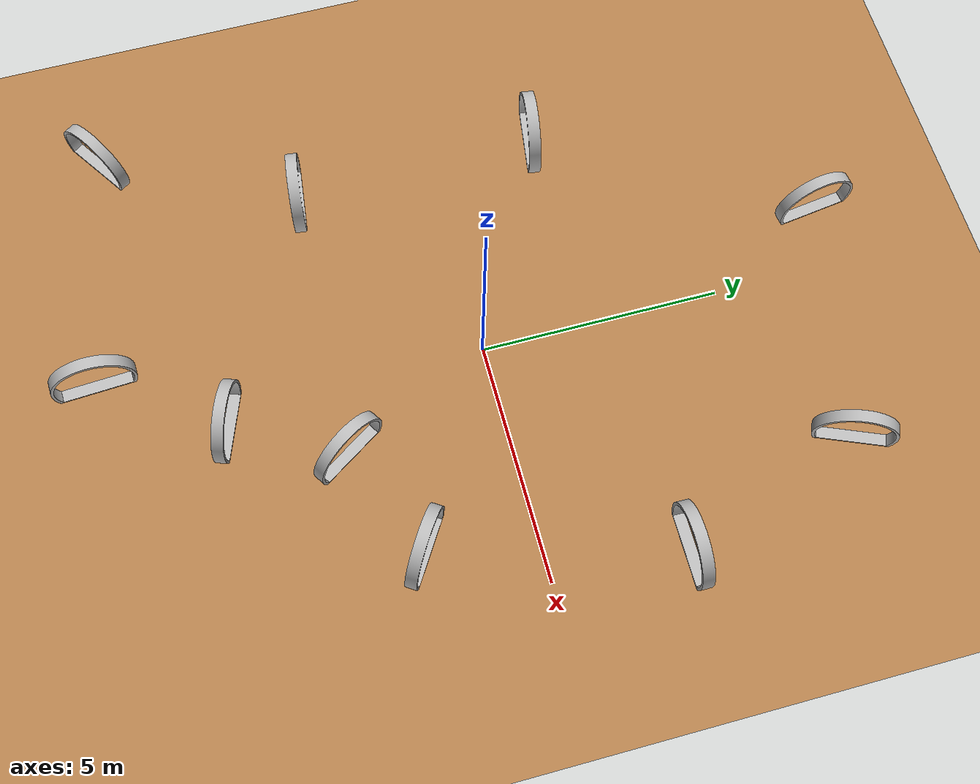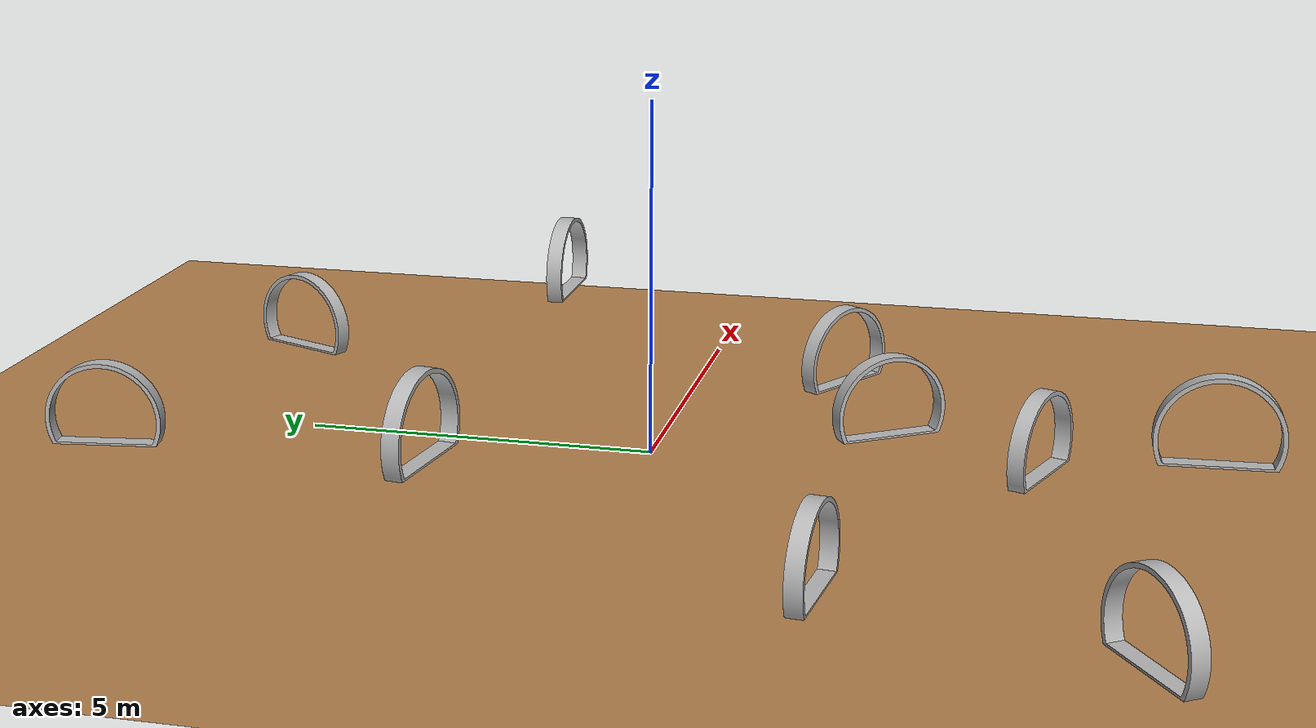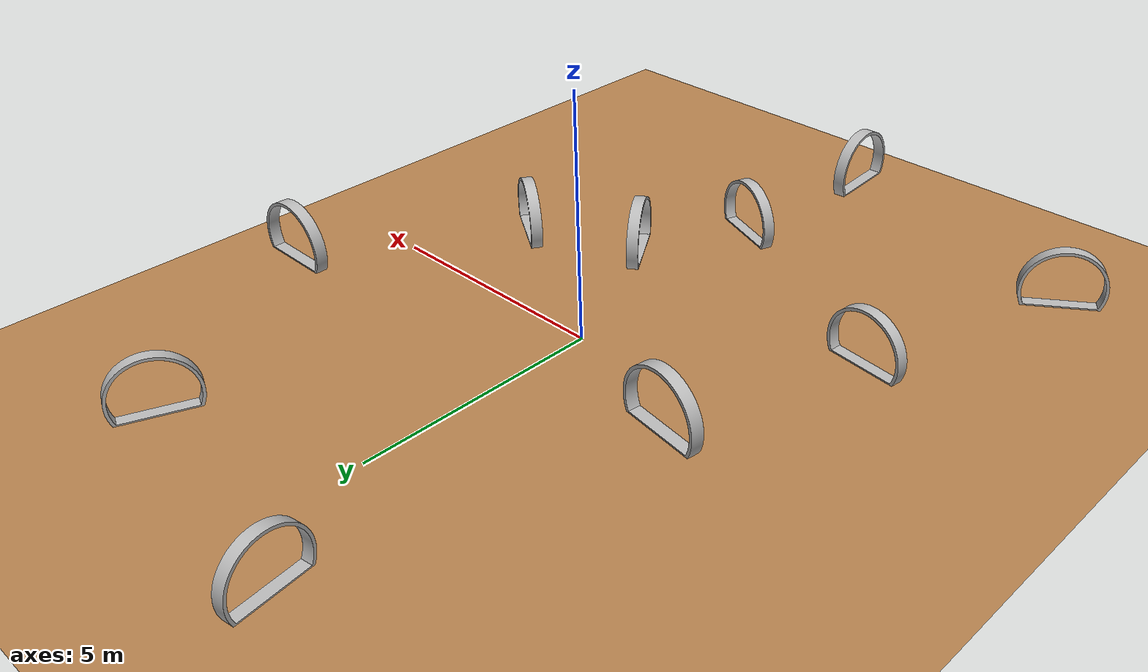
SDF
<sdf version="1.5">
 <world name="default">
  <light type="directional" name="point_light">
   <pose>0.0 0 15 0 0 0</pose>
   <cast_shadows>false</cast_shadows>
  </light>
  <model name="ground_plane">
   <static>1</static>
   <link name="link">
    <collision name="collision">
     <geometry><plane><normal>0 0 1</normal><size>100 100</size></plane></geometry>
     <surface><friction><ode><mu>100</mu><mu2>50</mu2></ode></friction></surface>
    </collision>
    <visual name="visual">
     <cast_shadows>0</cast_shadows>
     <geometry><plane><normal>0 0 1</normal><size>22 22</size></plane></geometry>
     <material><script><uri>model://texture/texture.material</uri><name>Floor_Wood</name></script></material>
    </visual>
   </link>
  </model>
  <physics name="default_physics" default="0" type="ode">
   <gravity>0 0 -9.8066</gravity>
   <ode>
    <solver>
     <type>quick</type>
     <iters>150</iters>
     <sor>1.3</sor>
     <use_dynamic_moi_rescaling>0</use_dynamic_moi_rescaling>
    </solver>
    <constraints>
     <cfm>0.00001</cfm>
     <erp>0.2</erp>
     <contact_max_correcting_vel>1000</contact_max_correcting_vel>
     <contact_surface_layer>0.01</contact_surface_layer>
    </constraints>
   </ode>
   <max_step_size>0.004</max_step_size>
   <real_time_factor>1000.0</real_time_factor>
   <real_time_update_rate>250</real_time_update_rate>
   <magnetic_field>6.0e-6 2.3e-5 -4.2e-5</magnetic_field>
  </physics>
  <gravity>0 0 -9.8066</gravity>
  <magnetic_field>6e-06 2.3e-05 -4.2e-05</magnetic_field>
  <atmosphere type="adiabatic"/>
  <scene><ambient>0.4 0.4 0.4 1</ambient><background>0.7 0.7 0.7 1</background><shadows>1</shadows></scene>
  <spherical_coordinates>
   <surface_model>EARTH_WGS84</surface_model>
   <latitude_deg>0</latitude_deg>
   <longitude_deg>0</longitude_deg>
   <elevation>0</elevation>
   <heading_deg>0</heading_deg>
  </spherical_coordinates>
  <model name="circle_gate_race_0">
   <static>1</static>
   <link name="link">
    <inertial>
     <mass>10</mass>
     <inertia><ixx>10</ixx><ixy>0</ixy><ixz>0</ixz><iyy>10</iyy><iyz>0</iyz><izz>10</izz></inertia>
    </inertial>
    <collision name="collision">
     <geometry>
      <mesh><uri>model://circle_gate_race/meshes/gate.dae</uri><scale>0.6 0.6 0.6</scale></mesh>
     </geometry>
    </collision>
    <visual name="visual">
     <geometry>
      <mesh><uri>model://circle_gate_race/meshes/gate.dae</uri><scale>0.6 0.6 0.6</scale></mesh>
     </geometry>
     <material><script><uri>model://texture/texture.material</uri><name>gate_texture</name></script></material>
    </visual>
   </link>
   <pose>1.48015 -3.14769 0 0 -0 0.580225</pose>
  </model>
  <model name="circle_gate_race">
   <static>1</static>
   <link name="link">
    <inertial>
     <mass>10</mass>
     <inertia><ixx>10</ixx><ixy>0</ixy><ixz>0</ixz><iyy>10</iyy><iyz>0</iyz><izz>10</izz></inertia>
    </inertial>
    <collision name="collision">
     <geometry>
      <mesh><uri>model://circle_gate_race/meshes/gate.dae</uri><scale>0.6 0.6 0.6</scale></mesh>
     </geometry>
    </collision>
    <visual name="visual">
     <geometry>
      <mesh><uri>model://circle_gate_race/meshes/gate.dae</uri><scale>0.6 0.6 0.6</scale></mesh>
     </geometry>
     <material><script><uri>model://texture/texture.material</uri><name>gate_texture</name></script></material>
    </visual>
   </link>
   <pose>0.314866 -5.34328 0 0 -0 1.21727</pose>
  </model>
  <model name="circle_gate_race_1">
   <static>1</static>
   <link name="link">
    <inertial>
     <mass>10</mass>
     <inertia><ixx>10</ixx><ixy>0</ixy><ixz>0</ixz><iyy>10</iyy><iyz>0</iyz><izz>10</izz></inertia>
    </inertial>
    <collision name="collision">
     <geometry>
      <mesh><uri>model://circle_gate_race/meshes/gate.dae</uri><scale>0.6 0.6 0.6</scale></mesh>
     </geometry>
    </collision>
    <visual name="visual">
     <geometry>
      <mesh><uri>model://circle_gate_race/meshes/gate.dae</uri><scale>0.6 0.6 0.6</scale></mesh>
     </geometry>
     <material><script><uri>model://texture/texture.material</uri><name>gate_texture</name></script></material>
    </visual>
   </link>
   <pose>3.77235 -2.18299 0 0 -0 0.999678</pose>
  </model>
  <model name="circle_gate_race_2">
   <static>1</static>
   <link name="link">
    <inertial>
     <mass>10</mass>
     <inertia><ixx>10</ixx><ixy>0</ixy><ixz>0</ixz><iyy>10</iyy><iyz>0</iyz><izz>10</izz></inertia>
    </inertial>
    <collision name="collision">
     <geometry>
      <mesh><uri>model://circle_gate_race/meshes/gate.dae</uri><scale>0.6 0.6 0.6</scale></mesh>
     </geometry>
    </collision>
    <visual name="visual">
     <geometry>
      <mesh><uri>model://circle_gate_race/meshes/gate.dae</uri><scale>0.6 0.6 0.6</scale></mesh>
     </geometry>
     <material><script><uri>model://texture/texture.material</uri><name>gate_texture</name></script></material>
    </visual>
   </link>
   <pose>5.21431 2.58942 0.779087 0 -0 1.56345</pose>
  </model>
  <model name="circle_gate_race_3">
   <static>1</static>
   <link name="link">
    <inertial>
     <mass>10</mass>
     <inertia><ixx>10</ixx><ixy>0</ixy><ixz>0</ixz><iyy>10</iyy><iyz>0</iyz><izz>10</izz></inertia>
    </inertial>
    <collision name="collision">
     <geometry>
      <mesh><uri>model://circle_gate_race/meshes/gate.dae</uri><scale>0.6 0.6 0.6</scale></mesh>
     </geometry>
    </collision>
    <visual name="visual">
     <geometry>
      <mesh><uri>model://circle_gate_race/meshes/gate.dae</uri><scale>0.6 0.6 0.6</scale></mesh>
     </geometry>
     <material><script><uri>model://texture/texture.material</uri><name>gate_texture</name></script></material>
    </visual>
   </link>
   <pose>-0.878261 -7.61263 0.767224 0 -0 0.056272</pose>
  </model>
  <model name="circle_gate_race_4">
   <static>1</static>
   <link name="link">
    <inertial>
     <mass>10</mass>
     <inertia><ixx>10</ixx><ixy>0</ixy><ixz>0</ixz><iyy>10</iyy><iyz>0</iyz><izz>10</izz></inertia>
    </inertial>
    <collision name="collision">
     <geometry>
      <mesh><uri>model://circle_gate_race/meshes/gate.dae</uri><scale>0.6 0.6 0.6</scale></mesh>
     </geometry>
    </collision>
    <visual name="visual">
     <geometry>
      <mesh><uri>model://circle_gate_race/meshes/gate.dae</uri><scale>0.6 0.6 0.6</scale></mesh>
     </geometry>
     <material><script><uri>model://texture/texture.material</uri><name>gate_texture</name></script></material>
    </visual>
   </link>
   <pose>-6.1108 -6.84951 0.267478 0 0 -0.971679</pose>
  </model>
  <model name="circle_gate_race_5">
   <static>1</static>
   <link name="link">
    <inertial>
     <mass>10</mass>
     <inertia><ixx>10</ixx><ixy>0</ixy><ixz>0</ixz><iyy>10</iyy><iyz>0</iyz><izz>10</izz></inertia>
    </inertial>
    <collision name="collision">
     <geometry>
      <mesh><uri>model://circle_gate_race/meshes/gate.dae</uri><scale>0.6 0.6 0.6</scale></mesh>
     </geometry>
    </collision>
    <visual name="visual">
     <geometry>
      <mesh><uri>model://circle_gate_race/meshes/gate.dae</uri><scale>0.6 0.6 0.6</scale></mesh>
     </geometry>
     <material><script><uri>model://texture/texture.material</uri><name>gate_texture</name></script></material>
    </visual>
   </link>
   <pose>-4.34943 -2.92763 0 0 0 -1.68827</pose>
  </model>
  <model name="circle_gate_race_6">
   <static>1</static>
   <link name="link">
    <inertial>
     <mass>10</mass>
     <inertia><ixx>10</ixx><ixy>0</ixy><ixz>0</ixz><iyy>10</iyy><iyz>0</iyz><izz>10</izz></inertia>
    </inertial>
    <collision name="collision">
     <geometry>
      <mesh><uri>model://circle_gate_race/meshes/gate.dae</uri><scale>0.6 0.6 0.6</scale></mesh>
     </geometry>
    </collision>
    <visual name="visual">
     <geometry>
      <mesh><uri>model://circle_gate_race/meshes/gate.dae</uri><scale>0.6 0.6 0.6</scale></mesh>
     </geometry>
     <material><script><uri>model://texture/texture.material</uri><name>gate_texture</name></script></material>
    </visual>
   </link>
   <pose>-3.8832 2.04514 1.08463 0 -0 1.42067</pose>
  </model>
  <model name="circle_gate_race_7">
   <static>1</static>
   <link name="link">
    <inertial>
     <mass>10</mass>
     <inertia><ixx>10</ixx><ixy>0</ixy><ixz>0</ixz><iyy>10</iyy><iyz>0</iyz><izz>10</izz></inertia>
    </inertial>
    <collision name="collision">
     <geometry>
      <mesh><uri>model://circle_gate_race/meshes/gate.dae</uri><scale>0.6 0.6 0.6</scale></mesh>
     </geometry>
    </collision>
    <visual name="visual">
     <geometry>
      <mesh><uri>model://circle_gate_race/meshes/gate.dae</uri><scale>0.6 0.6 0.6</scale></mesh>
     </geometry>
     <material><script><uri>model://texture/texture.material</uri><name>gate_texture</name></script></material>
    </visual>
   </link>
   <pose>-1.35505 7.62576 0 0 -0 0.136466</pose>
  </model>
  <model name="circle_gate_race_8">
   <static>1</static>
   <link name="link">
    <inertial>
     <mass>10</mass>
     <inertia><ixx>10</ixx><ixy>0</ixy><ixz>0</ixz><iyy>10</iyy><iyz>0</iyz><izz>10</izz></inertia>
    </inertial>
    <collision name="collision">
     <geometry>
      <mesh><uri>model://circle_gate_race/meshes/gate.dae</uri><scale>0.6 0.6 0.6</scale></mesh>
     </geometry>
    </collision>
    <visual name="visual">
     <geometry>
      <mesh><uri>model://circle_gate_race/meshes/gate.dae</uri><scale>0.6 0.6 0.6</scale></mesh>
     </geometry>
     <material><script><uri>model://texture/texture.material</uri><name>gate_texture</name></script></material>
    </visual>
   </link>
   <pose>3.69887 6.5923 0 0 0 -0.393424</pose>
  </model>
 </world>
</sdf>
